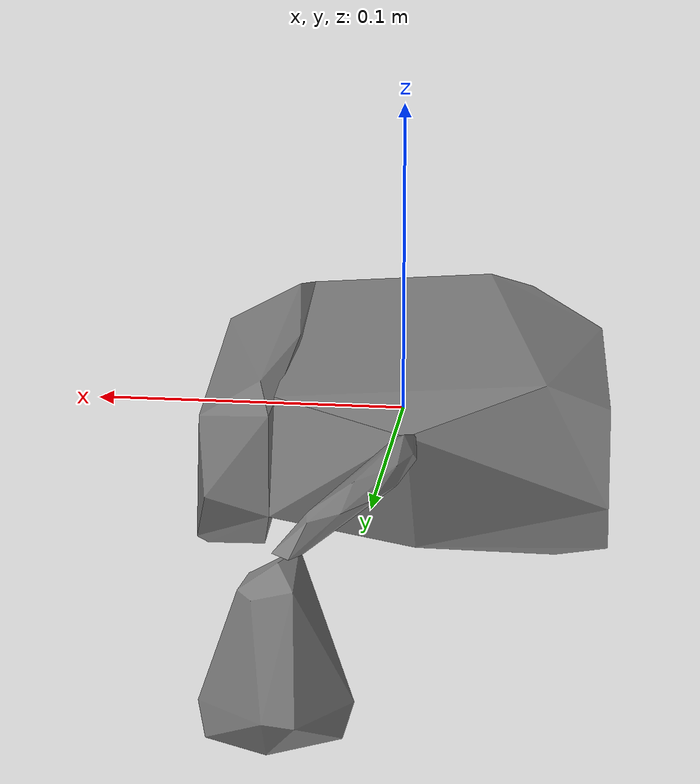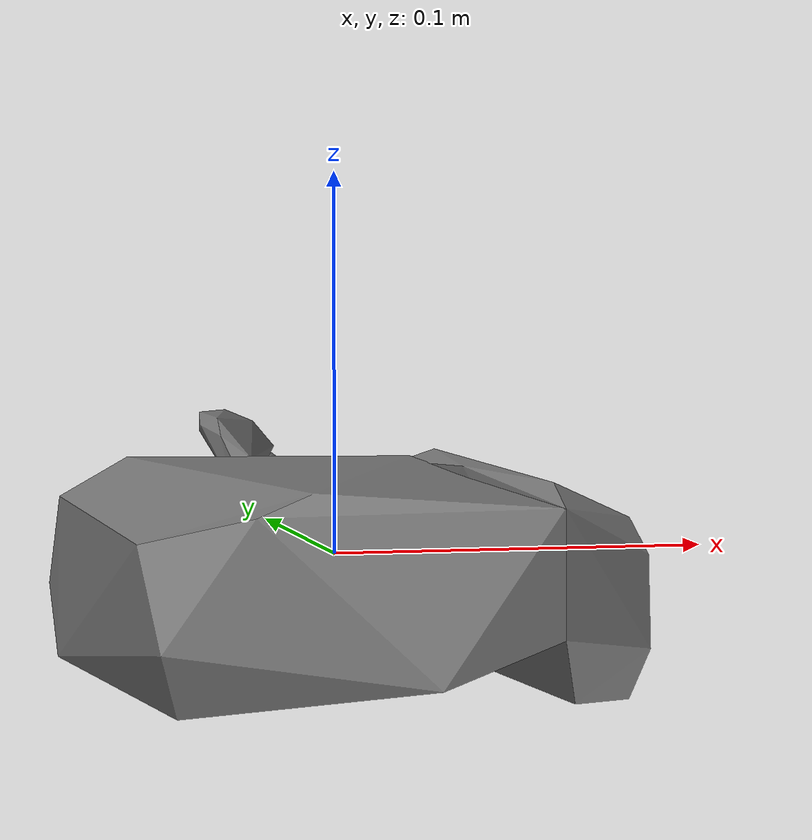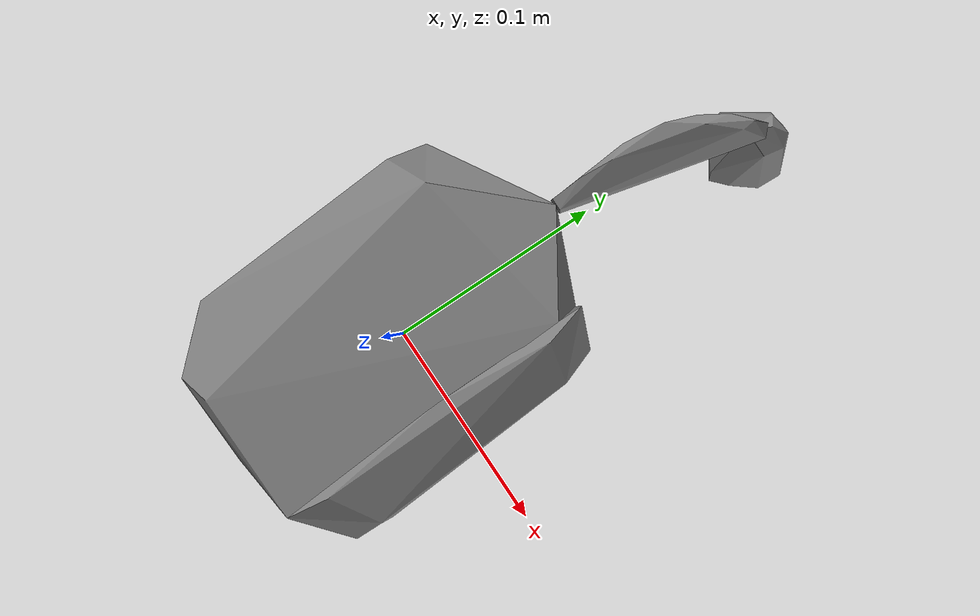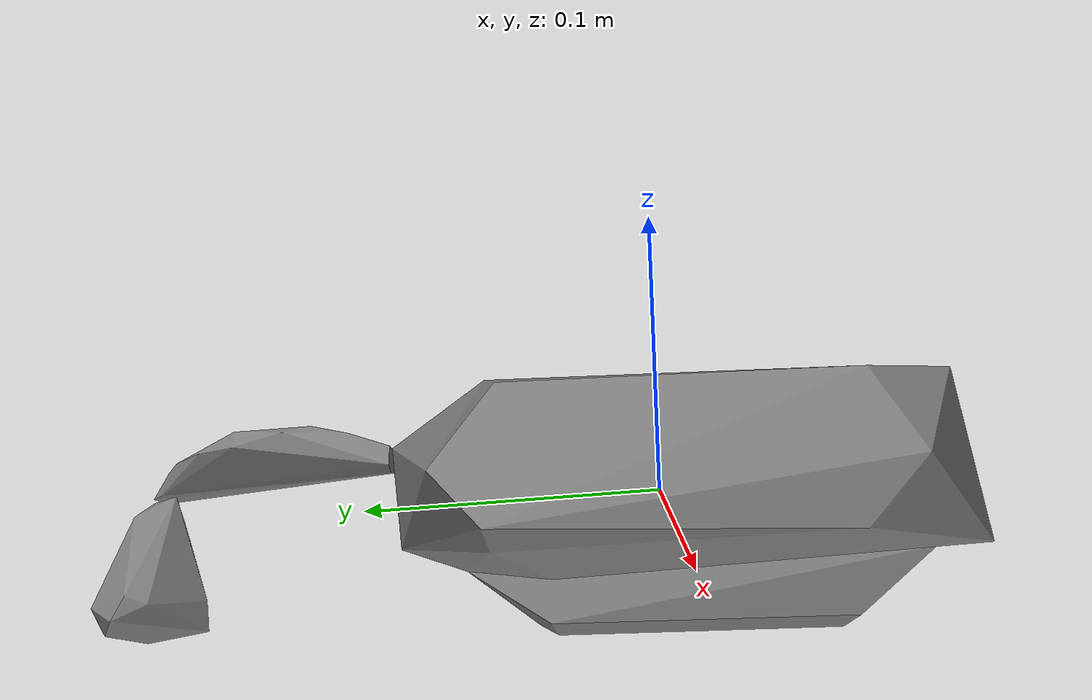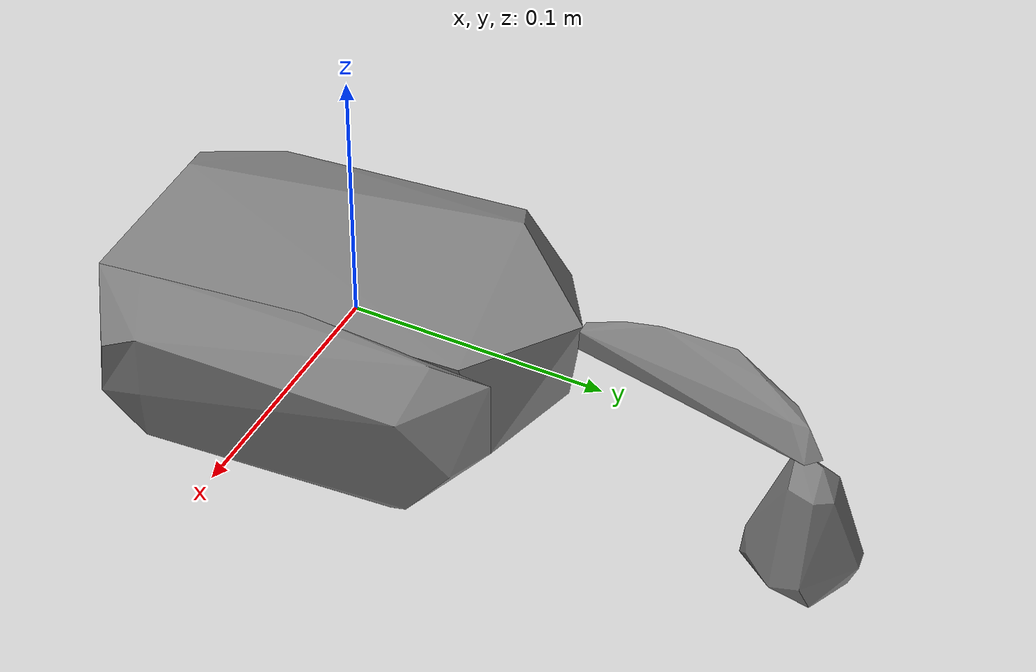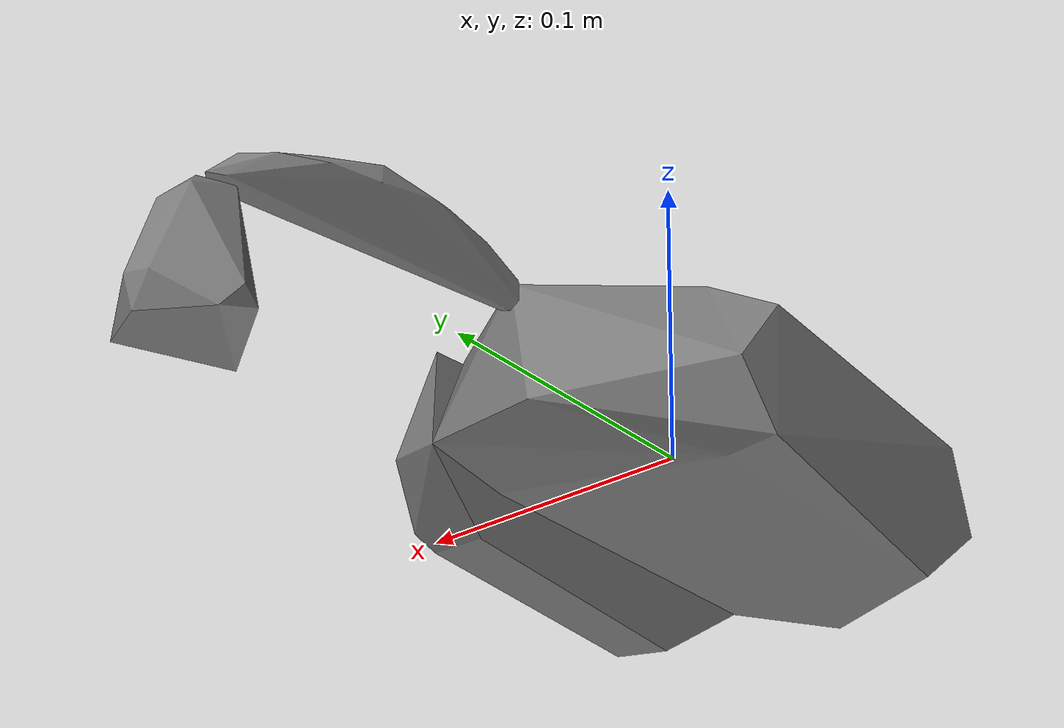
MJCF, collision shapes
<mujoco model="g_lego_duplo">
  <compiler angle="radian" />

  <asset>
    <mesh name="g_lego_duplo_visual_mesh" file="g_lego_duplo/textured.obj" />
    <mesh name="g_lego_duplo_collision_mesh_0" file="g_lego_duplo/textured_coacd_0.stl" />
    <mesh name="g_lego_duplo_collision_mesh_1" file="g_lego_duplo/textured_coacd_1.stl" />
    <mesh name="g_lego_duplo_collision_mesh_2" file="g_lego_duplo/textured_coacd_2.stl" />
    <mesh name="g_lego_duplo_collision_mesh_3" file="g_lego_duplo/textured_coacd_3.stl" />
    <texture name="g_lego_duplo_texture" type="2d" file="g_lego_duplo/texture_map.png" />
    <material name="g_lego_duplo_material" texture="g_lego_duplo_texture" />
  </asset>

  <worldbody>
    <body name="g_lego_duplo" pos="0 0 0" euler="0 0 0">
      <freejoint name="g_lego_duplo_joint" />
      <geom name="g_lego_duplo_visual_geom" type="mesh" mesh="g_lego_duplo_visual_mesh" material="g_lego_duplo_material" pos="0.01440079954550051 0.08344438751622156 -0.031183760567335284" euler="0 0 0" contype="0" conaffinity="0" group="0" />
      <geom name="g_lego_duplo_collision_geom_0" type="mesh" mesh="g_lego_duplo_collision_mesh_0" pos="0.01440079954550051 0.08344438751622156 -0.031183760567335284" euler="0 0 0" contype="1" conaffinity="1" group="3" />
      <geom name="g_lego_duplo_collision_geom_1" type="mesh" mesh="g_lego_duplo_collision_mesh_1" pos="0.01440079954550051 0.08344438751622156 -0.031183760567335284" euler="0 0 0" contype="1" conaffinity="1" group="3" />
      <geom name="g_lego_duplo_collision_geom_2" type="mesh" mesh="g_lego_duplo_collision_mesh_2" pos="0.01440079954550051 0.08344438751622156 -0.031183760567335284" euler="0 0 0" contype="1" conaffinity="1" group="3" />
      <geom name="g_lego_duplo_collision_geom_3" type="mesh" mesh="g_lego_duplo_collision_mesh_3" pos="0.01440079954550051 0.08344438751622156 -0.031183760567335284" euler="0 0 0" contype="1" conaffinity="1" group="3" />
      <inertial pos="0 0 0" euler="0 0 0" mass="0.1488" diaginertia="0.001 0.001 0.001" />
    </body>
  </worldbody>
</mujoco>
